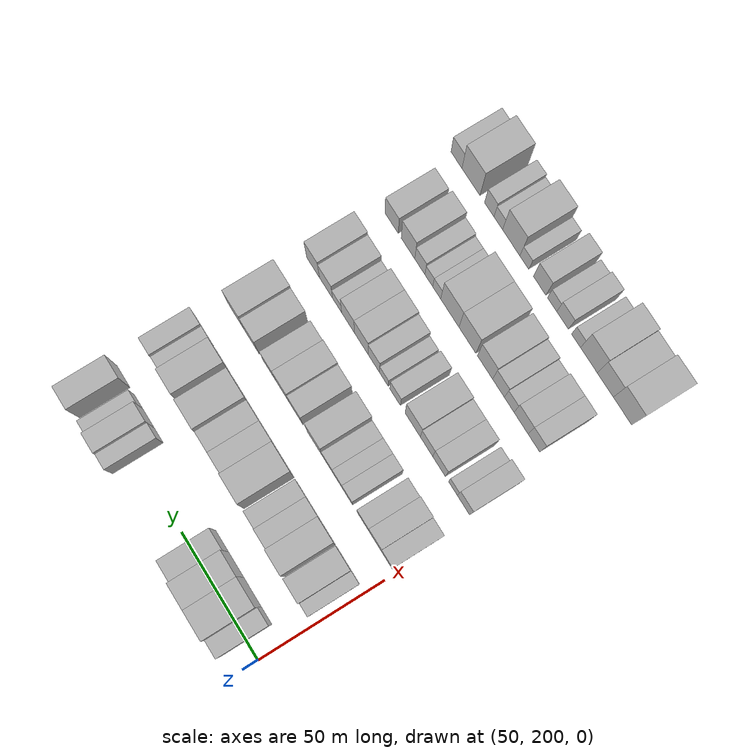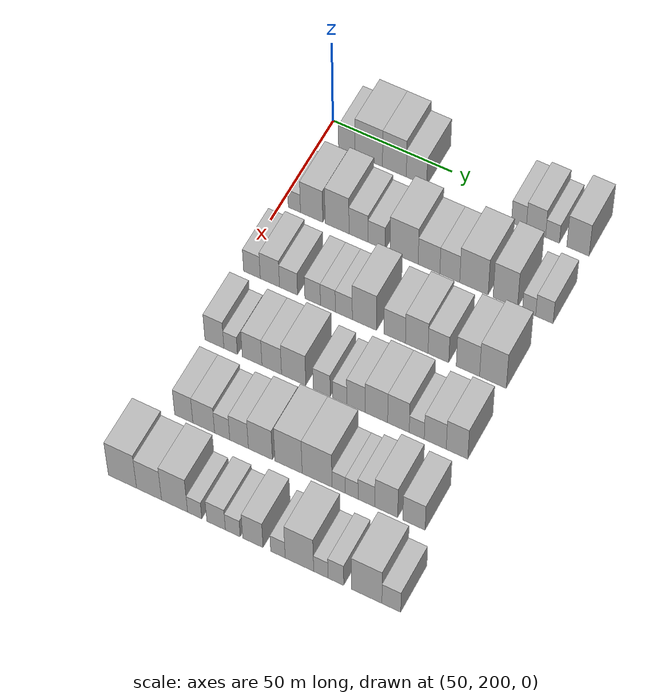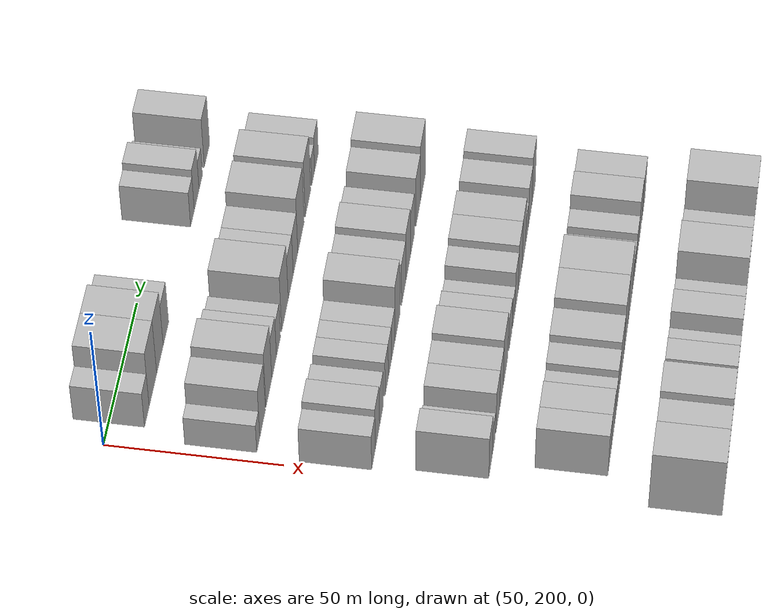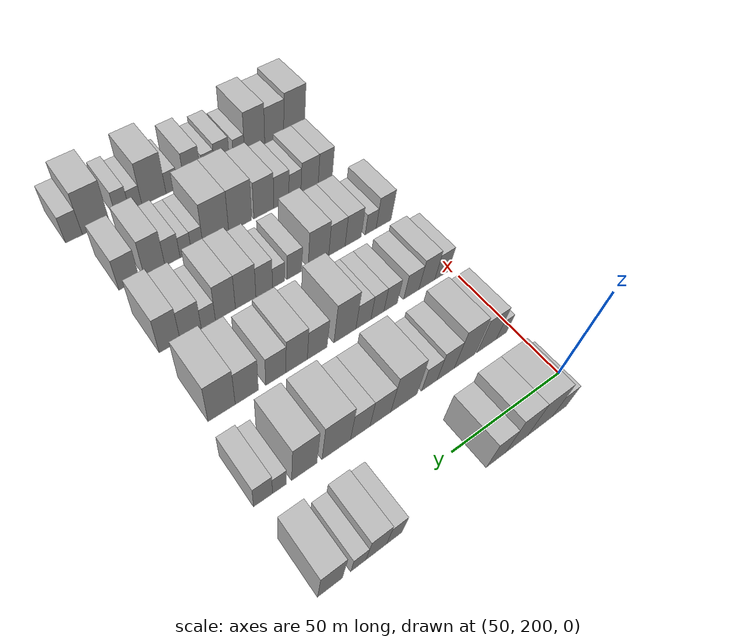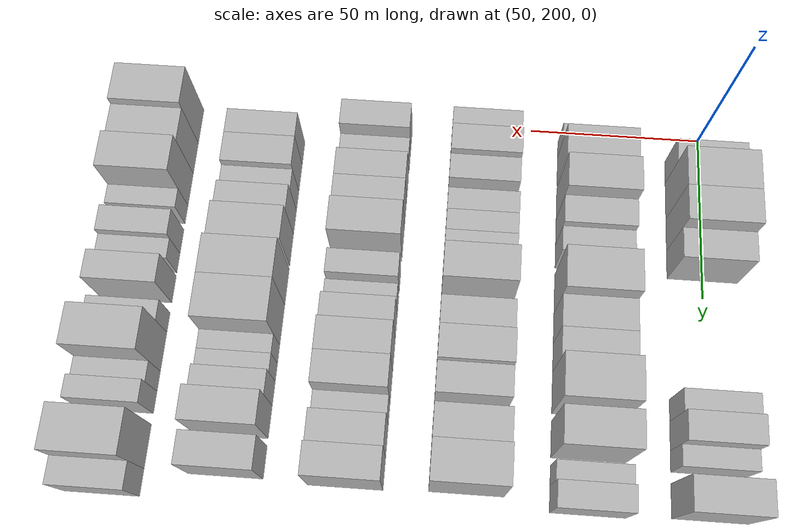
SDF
<sdf version="1.6">
 <world name="default">
  <model name="building_85">
   <static>1</static>
   <pose>50.0000 211.0096 0 0.000000 0.000000 0.000000</pose>
   <link name="link">
    <pose>0 0 7.50 0 0 0</pose>
    <collision name="collision"><geometry><box><size>20.0000 6.9923 15.0000</size></box></geometry></collision>
    <visual name="visual">
     <cast_shadows>0</cast_shadows>
     <geometry><box><size>20.0000 6.9923 15.0000</size></box></geometry>
     <material>
      <script>
       <uri>model://HANNAS_wall/materials/scripts</uri>
       <uri>model://HANNAS_wall/materials/textures</uri>
       <name>vrc/HANNAS_wall</name>
      </script>
     </material>
    </visual>
   </link>
  </model>
  <model name="building_86">
   <static>1</static>
   <pose>50.0000 220.2653 0 0.000000 0.000000 0.000000</pose>
   <link name="link">
    <pose>0 0 12.00 0 0 0</pose>
    <collision name="collision"><geometry><box><size>20.0000 11.5191 24.0000</size></box></geometry></collision>
    <visual name="visual">
     <cast_shadows>0</cast_shadows>
     <geometry><box><size>20.0000 11.5191 24.0000</size></box></geometry>
     <material>
      <script>
       <uri>model://HANNAS_wall/materials/scripts</uri>
       <uri>model://HANNAS_wall/materials/textures</uri>
       <name>vrc/HANNAS_wall</name>
      </script>
     </material>
    </visual>
   </link>
  </model>
  <model name="building_87">
   <static>1</static>
   <pose>50.0000 231.0287 0 0.000000 0.000000 0.000000</pose>
   <link name="link">
    <pose>0 0 12.00 0 0 0</pose>
    <collision name="collision"><geometry><box><size>20.0000 10.0076 24.0000</size></box></geometry></collision>
    <visual name="visual">
     <cast_shadows>0</cast_shadows>
     <geometry><box><size>20.0000 10.0076 24.0000</size></box></geometry>
     <material>
      <script>
       <uri>model://HANNAS_wall/materials/scripts</uri>
       <uri>model://HANNAS_wall/materials/textures</uri>
       <name>vrc/HANNAS_wall</name>
      </script>
     </material>
    </visual>
   </link>
  </model>
  <model name="building_88">
   <static>1</static>
   <pose>50.0000 240.2920 0 0.000000 0.000000 0.000000</pose>
   <link name="link">
    <pose>0 0 9.00 0 0 0</pose>
    <collision name="collision"><geometry><box><size>20.0000 8.5190 18.0000</size></box></geometry></collision>
    <visual name="visual">
     <cast_shadows>0</cast_shadows>
     <geometry><box><size>20.0000 8.5190 18.0000</size></box></geometry>
     <material>
      <script>
       <uri>model://HANNAS_wall/materials/scripts</uri>
       <uri>model://HANNAS_wall/materials/textures</uri>
       <name>vrc/HANNAS_wall</name>
      </script>
     </material>
    </visual>
   </link>
  </model>
  <model name="building_89">
   <static>1</static>
   <pose>50.0000 282.6709 0 0.000000 0.000000 0.000000</pose>
   <link name="link">
    <pose>0 0 7.50 0 0 0</pose>
    <collision name="collision"><geometry><box><size>20.0000 6.0796 15.0000</size></box></geometry></collision>
    <visual name="visual">
     <cast_shadows>0</cast_shadows>
     <geometry><box><size>20.0000 6.0796 15.0000</size></box></geometry>
     <material>
      <script>
       <uri>model://HANNAS_wall/materials/scripts</uri>
       <uri>model://HANNAS_wall/materials/textures</uri>
       <name>vrc/HANNAS_wall</name>
      </script>
     </material>
    </visual>
   </link>
  </model>
  <model name="building_90">
   <static>1</static>
   <pose>50.0000 289.6545 0 0.000000 0.000000 0.000000</pose>
   <link name="link">
    <pose>0 0 9.00 0 0 0</pose>
    <collision name="collision"><geometry><box><size>20.0000 7.8875 18.0000</size></box></geometry></collision>
    <visual name="visual">
     <cast_shadows>0</cast_shadows>
     <geometry><box><size>20.0000 7.8875 18.0000</size></box></geometry>
     <material>
      <script>
       <uri>model://HANNAS_wall/materials/scripts</uri>
       <uri>model://HANNAS_wall/materials/textures</uri>
       <name>vrc/HANNAS_wall</name>
      </script>
     </material>
    </visual>
   </link>
  </model>
  <model name="building_91">
   <static>1</static>
   <pose>50.0000 296.4424 0 0.000000 0.000000 0.000000</pose>
   <link name="link">
    <pose>0 0 6.00 0 0 0</pose>
    <collision name="collision"><geometry><box><size>20.0000 5.6882 12.0000</size></box></geometry></collision>
    <visual name="visual">
     <cast_shadows>0</cast_shadows>
     <geometry><box><size>20.0000 5.6882 12.0000</size></box></geometry>
     <material>
      <script>
       <uri>model://HANNAS_wall/materials/scripts</uri>
       <uri>model://HANNAS_wall/materials/textures</uri>
       <name>vrc/HANNAS_wall</name>
      </script>
     </material>
    </visual>
   </link>
  </model>
  <model name="building_92">
   <static>1</static>
   <pose>50.0000 306.8299 0 0.000000 0.000000 0.000000</pose>
   <link name="link">
    <pose>0 0 10.50 0 0 0</pose>
    <collision name="collision"><geometry><box><size>20.0000 9.0868 21.0000</size></box></geometry></collision>
    <visual name="visual">
     <cast_shadows>0</cast_shadows>
     <geometry><box><size>20.0000 9.0868 21.0000</size></box></geometry>
     <material>
      <script>
       <uri>model://HANNAS_wall/materials/scripts</uri>
       <uri>model://HANNAS_wall/materials/textures</uri>
       <name>vrc/HANNAS_wall</name>
      </script>
     </material>
    </visual>
   </link>
  </model>
  <model name="building_205">
   <static>1</static>
   <pose>82.0000 205.8001 0 0.000000 0.000000 0.000000</pose>
   <link name="link">
    <pose>0 0 6.00 0 0 0</pose>
    <collision name="collision"><geometry><box><size>20.0000 5.0955 12.0000</size></box></geometry></collision>
    <visual name="visual">
     <cast_shadows>0</cast_shadows>
     <geometry><box><size>20.0000 5.0955 12.0000</size></box></geometry>
     <material>
      <script>
       <uri>model://HANNAS_wall/materials/scripts</uri>
       <uri>model://HANNAS_wall/materials/textures</uri>
       <name>vrc/HANNAS_wall</name>
      </script>
     </material>
    </visual>
   </link>
  </model>
  <model name="building_206">
   <static>1</static>
   <pose>82.0000 213.0191 0 0.000000 0.000000 0.000000</pose>
   <link name="link">
    <pose>0 0 10.50 0 0 0</pose>
    <collision name="collision"><geometry><box><size>20.0000 9.3424 21.0000</size></box></geometry></collision>
    <visual name="visual">
     <cast_shadows>0</cast_shadows>
     <geometry><box><size>20.0000 9.3424 21.0000</size></box></geometry>
     <material>
      <script>
       <uri>model://HANNAS_wall/materials/scripts</uri>
       <uri>model://HANNAS_wall/materials/textures</uri>
       <name>vrc/HANNAS_wall</name>
      </script>
     </material>
    </visual>
   </link>
  </model>
  <model name="building_207">
   <static>1</static>
   <pose>82.0000 223.6529 0 0.000000 0.000000 0.000000</pose>
   <link name="link">
    <pose>0 0 12.00 0 0 0</pose>
    <collision name="collision"><geometry><box><size>20.0000 9.9253 24.0000</size></box></geometry></collision>
    <visual name="visual">
     <cast_shadows>0</cast_shadows>
     <geometry><box><size>20.0000 9.9253 24.0000</size></box></geometry>
     <material>
      <script>
       <uri>model://HANNAS_wall/materials/scripts</uri>
       <uri>model://HANNAS_wall/materials/textures</uri>
       <name>vrc/HANNAS_wall</name>
      </script>
     </material>
    </visual>
   </link>
  </model>
  <model name="building_208">
   <static>1</static>
   <pose>82.0000 232.5966 0 0.000000 0.000000 0.000000</pose>
   <link name="link">
    <pose>0 0 9.00 0 0 0</pose>
    <collision name="collision"><geometry><box><size>20.0000 7.9620 18.0000</size></box></geometry></collision>
    <visual name="visual">
     <cast_shadows>0</cast_shadows>
     <geometry><box><size>20.0000 7.9620 18.0000</size></box></geometry>
     <material>
      <script>
       <uri>model://HANNAS_wall/materials/scripts</uri>
       <uri>model://HANNAS_wall/materials/textures</uri>
       <name>vrc/HANNAS_wall</name>
      </script>
     </material>
    </visual>
   </link>
  </model>
  <model name="building_209">
   <static>1</static>
   <pose>82.0000 240.0907 0 0.000000 0.000000 0.000000</pose>
   <link name="link">
    <pose>0 0 7.50 0 0 0</pose>
    <collision name="collision"><geometry><box><size>20.0000 7.0262 15.0000</size></box></geometry></collision>
    <visual name="visual">
     <cast_shadows>0</cast_shadows>
     <geometry><box><size>20.0000 7.0262 15.0000</size></box></geometry>
     <material>
      <script>
       <uri>model://HANNAS_wall/materials/scripts</uri>
       <uri>model://HANNAS_wall/materials/textures</uri>
       <name>vrc/HANNAS_wall</name>
      </script>
     </material>
    </visual>
   </link>
  </model>
  <model name="building_210">
   <static>1</static>
   <pose>82.0000 251.4069 0 0.000000 0.000000 0.000000</pose>
   <link name="link">
    <pose>0 0 12.00 0 0 0</pose>
    <collision name="collision"><geometry><box><size>20.0000 11.6060 24.0000</size></box></geometry></collision>
    <visual name="visual">
     <cast_shadows>0</cast_shadows>
     <geometry><box><size>20.0000 11.6060 24.0000</size></box></geometry>
     <material>
      <script>
       <uri>model://HANNAS_wall/materials/scripts</uri>
       <uri>model://HANNAS_wall/materials/textures</uri>
       <name>vrc/HANNAS_wall</name>
      </script>
     </material>
    </visual>
   </link>
  </model>
  <model name="building_211">
   <static>1</static>
   <pose>82.0000 261.6581 0 0.000000 0.000000 0.000000</pose>
   <link name="link">
    <pose>0 0 9.00 0 0 0</pose>
    <collision name="collision"><geometry><box><size>20.0000 8.8963 18.0000</size></box></geometry></collision>
    <visual name="visual">
     <cast_shadows>0</cast_shadows>
     <geometry><box><size>20.0000 8.8963 18.0000</size></box></geometry>
     <material>
      <script>
       <uri>model://HANNAS_wall/materials/scripts</uri>
       <uri>model://HANNAS_wall/materials/textures</uri>
       <name>vrc/HANNAS_wall</name>
      </script>
     </material>
    </visual>
   </link>
  </model>
  <model name="building_212">
   <static>1</static>
   <pose>82.0000 270.1743 0 0.000000 0.000000 0.000000</pose>
   <link name="link">
    <pose>0 0 9.00 0 0 0</pose>
    <collision name="collision"><geometry><box><size>20.0000 8.1362 18.0000</size></box></geometry></collision>
    <visual name="visual">
     <cast_shadows>0</cast_shadows>
     <geometry><box><size>20.0000 8.1362 18.0000</size></box></geometry>
     <material>
      <script>
       <uri>model://HANNAS_wall/materials/scripts</uri>
       <uri>model://HANNAS_wall/materials/textures</uri>
       <name>vrc/HANNAS_wall</name>
      </script>
     </material>
    </visual>
   </link>
  </model>
  <model name="building_213">
   <static>1</static>
   <pose>82.0000 280.0347 0 0.000000 0.000000 0.000000</pose>
   <link name="link">
    <pose>0 0 12.00 0 0 0</pose>
    <collision name="collision"><geometry><box><size>20.0000 11.5846 24.0000</size></box></geometry></collision>
    <visual name="visual">
     <cast_shadows>0</cast_shadows>
     <geometry><box><size>20.0000 11.5846 24.0000</size></box></geometry>
     <material>
      <script>
       <uri>model://HANNAS_wall/materials/scripts</uri>
       <uri>model://HANNAS_wall/materials/textures</uri>
       <name>vrc/HANNAS_wall</name>
      </script>
     </material>
    </visual>
   </link>
  </model>
  <model name="building_214">
   <static>1</static>
   <pose>82.0000 292.7806 0 0.000000 0.000000 0.000000</pose>
   <link name="link">
    <pose>0 0 12.00 0 0 0</pose>
    <collision name="collision"><geometry><box><size>20.0000 9.9070 24.0000</size></box></geometry></collision>
    <visual name="visual">
     <cast_shadows>0</cast_shadows>
     <geometry><box><size>20.0000 9.9070 24.0000</size></box></geometry>
     <material>
      <script>
       <uri>model://HANNAS_wall/materials/scripts</uri>
       <uri>model://HANNAS_wall/materials/textures</uri>
       <name>vrc/HANNAS_wall</name>
      </script>
     </material>
    </visual>
   </link>
  </model>
  <model name="building_215">
   <static>1</static>
   <pose>82.0000 302.4039 0 0.000000 0.000000 0.000000</pose>
   <link name="link">
    <pose>0 0 6.00 0 0 0</pose>
    <collision name="collision"><geometry><box><size>20.0000 5.3396 12.0000</size></box></geometry></collision>
    <visual name="visual">
     <cast_shadows>0</cast_shadows>
     <geometry><box><size>20.0000 5.3396 12.0000</size></box></geometry>
     <material>
      <script>
       <uri>model://HANNAS_wall/materials/scripts</uri>
       <uri>model://HANNAS_wall/materials/textures</uri>
       <name>vrc/HANNAS_wall</name>
      </script>
     </material>
    </visual>
   </link>
  </model>
  <model name="building_216">
   <static>1</static>
   <pose>82.0000 308.5845 0 0.000000 0.000000 0.000000</pose>
   <link name="link">
    <pose>0 0 7.50 0 0 0</pose>
    <collision name="collision"><geometry><box><size>20.0000 7.0216 15.0000</size></box></geometry></collision>
    <visual name="visual">
     <cast_shadows>0</cast_shadows>
     <geometry><box><size>20.0000 7.0216 15.0000</size></box></geometry>
     <material>
      <script>
       <uri>model://HANNAS_wall/materials/scripts</uri>
       <uri>model://HANNAS_wall/materials/textures</uri>
       <name>vrc/HANNAS_wall</name>
      </script>
     </material>
    </visual>
   </link>
  </model>
  <model name="building_325">
   <static>1</static>
   <pose>114.0000 205.2593 0 0.000000 0.000000 0.000000</pose>
   <link name="link">
    <pose>0 0 7.50 0 0 0</pose>
    <collision name="collision"><geometry><box><size>20.0000 6.9402 15.0000</size></box></geometry></collision>
    <visual name="visual">
     <cast_shadows>0</cast_shadows>
     <geometry><box><size>20.0000 6.9402 15.0000</size></box></geometry>
     <material>
      <script>
       <uri>model://HANNAS_wall/materials/scripts</uri>
       <uri>model://HANNAS_wall/materials/textures</uri>
       <name>vrc/HANNAS_wall</name>
      </script>
     </material>
    </visual>
   </link>
  </model>
  <model name="building_326">
   <static>1</static>
   <pose>114.0000 212.7183 0 0.000000 0.000000 0.000000</pose>
   <link name="link">
    <pose>0 0 9.00 0 0 0</pose>
    <collision name="collision"><geometry><box><size>20.0000 7.9778 18.0000</size></box></geometry></collision>
    <visual name="visual">
     <cast_shadows>0</cast_shadows>
     <geometry><box><size>20.0000 7.9778 18.0000</size></box></geometry>
     <material>
      <script>
       <uri>model://HANNAS_wall/materials/scripts</uri>
       <uri>model://HANNAS_wall/materials/textures</uri>
       <name>vrc/HANNAS_wall</name>
      </script>
     </material>
    </visual>
   </link>
  </model>
  <model name="building_327">
   <static>1</static>
   <pose>114.0000 220.4417 0 0.000000 0.000000 0.000000</pose>
   <link name="link">
    <pose>0 0 7.50 0 0 0</pose>
    <collision name="collision"><geometry><box><size>20.0000 7.4690 15.0000</size></box></geometry></collision>
    <visual name="visual">
     <cast_shadows>0</cast_shadows>
     <geometry><box><size>20.0000 7.4690 15.0000</size></box></geometry>
     <material>
      <script>
       <uri>model://HANNAS_wall/materials/scripts</uri>
       <uri>model://HANNAS_wall/materials/textures</uri>
       <name>vrc/HANNAS_wall</name>
      </script>
     </material>
    </visual>
   </link>
  </model>
  <model name="building_328">
   <static>1</static>
   <pose>114.0000 230.3943 0 0.000000 0.000000 0.000000</pose>
   <link name="link">
    <pose>0 0 7.50 0 0 0</pose>
    <collision name="collision"><geometry><box><size>20.0000 6.4360 15.0000</size></box></geometry></collision>
    <visual name="visual">
     <cast_shadows>0</cast_shadows>
     <geometry><box><size>20.0000 6.4360 15.0000</size></box></geometry>
     <material>
      <script>
       <uri>model://HANNAS_wall/materials/scripts</uri>
       <uri>model://HANNAS_wall/materials/textures</uri>
       <name>vrc/HANNAS_wall</name>
      </script>
     </material>
    </visual>
   </link>
  </model>
  <model name="building_329">
   <static>1</static>
   <pose>114.0000 236.6741 0 0.000000 0.000000 0.000000</pose>
   <link name="link">
    <pose>0 0 7.50 0 0 0</pose>
    <collision name="collision"><geometry><box><size>20.0000 6.1237 15.0000</size></box></geometry></collision>
    <visual name="visual">
     <cast_shadows>0</cast_shadows>
     <geometry><box><size>20.0000 6.1237 15.0000</size></box></geometry>
     <material>
      <script>
       <uri>model://HANNAS_wall/materials/scripts</uri>
       <uri>model://HANNAS_wall/materials/textures</uri>
       <name>vrc/HANNAS_wall</name>
      </script>
     </material>
    </visual>
   </link>
  </model>
  <model name="building_330">
   <static>1</static>
   <pose>114.0000 243.2064 0 0.000000 0.000000 0.000000</pose>
   <link name="link">
    <pose>0 0 7.50 0 0 0</pose>
    <collision name="collision"><geometry><box><size>20.0000 6.9409 15.0000</size></box></geometry></collision>
    <visual name="visual">
     <cast_shadows>0</cast_shadows>
     <geometry><box><size>20.0000 6.9409 15.0000</size></box></geometry>
     <material>
      <script>
       <uri>model://HANNAS_wall/materials/scripts</uri>
       <uri>model://HANNAS_wall/materials/textures</uri>
       <name>vrc/HANNAS_wall</name>
      </script>
     </material>
    </visual>
   </link>
  </model>
  <model name="building_331">
   <static>1</static>
   <pose>114.0000 251.6370 0 0.000000 0.000000 0.000000</pose>
   <link name="link">
    <pose>0 0 12.00 0 0 0</pose>
    <collision name="collision"><geometry><box><size>20.0000 9.9203 24.0000</size></box></geometry></collision>
    <visual name="visual">
     <cast_shadows>0</cast_shadows>
     <geometry><box><size>20.0000 9.9203 24.0000</size></box></geometry>
     <material>
      <script>
       <uri>model://HANNAS_wall/materials/scripts</uri>
       <uri>model://HANNAS_wall/materials/textures</uri>
       <name>vrc/HANNAS_wall</name>
      </script>
     </material>
    </visual>
   </link>
  </model>
  <model name="building_332">
   <static>1</static>
   <pose>114.0000 263.9514 0 0.000000 0.000000 0.000000</pose>
   <link name="link">
    <pose>0 0 9.00 0 0 0</pose>
    <collision name="collision"><geometry><box><size>20.0000 8.7083 18.0000</size></box></geometry></collision>
    <visual name="visual">
     <cast_shadows>0</cast_shadows>
     <geometry><box><size>20.0000 8.7083 18.0000</size></box></geometry>
     <material>
      <script>
       <uri>model://HANNAS_wall/materials/scripts</uri>
       <uri>model://HANNAS_wall/materials/textures</uri>
       <name>vrc/HANNAS_wall</name>
      </script>
     </material>
    </visual>
   </link>
  </model>
  <model name="building_333">
   <static>1</static>
   <pose>114.0000 272.8801 0 0.000000 0.000000 0.000000</pose>
   <link name="link">
    <pose>0 0 10.50 0 0 0</pose>
    <collision name="collision"><geometry><box><size>20.0000 9.1491 21.0000</size></box></geometry></collision>
    <visual name="visual">
     <cast_shadows>0</cast_shadows>
     <geometry><box><size>20.0000 9.1491 21.0000</size></box></geometry>
     <material>
      <script>
       <uri>model://HANNAS_wall/materials/scripts</uri>
       <uri>model://HANNAS_wall/materials/textures</uri>
       <name>vrc/HANNAS_wall</name>
      </script>
     </material>
    </visual>
   </link>
  </model>
  <model name="building_334">
   <static>1</static>
   <pose>114.0000 281.6381 0 0.000000 0.000000 0.000000</pose>
   <link name="link">
    <pose>0 0 9.00 0 0 0</pose>
    <collision name="collision"><geometry><box><size>20.0000 8.3670 18.0000</size></box></geometry></collision>
    <visual name="visual">
     <cast_shadows>0</cast_shadows>
     <geometry><box><size>20.0000 8.3670 18.0000</size></box></geometry>
     <material>
      <script>
       <uri>model://HANNAS_wall/materials/scripts</uri>
       <uri>model://HANNAS_wall/materials/textures</uri>
       <name>vrc/HANNAS_wall</name>
      </script>
     </material>
    </visual>
   </link>
  </model>
  <model name="building_335">
   <static>1</static>
   <pose>114.0000 293.5046 0 0.000000 0.000000 0.000000</pose>
   <link name="link">
    <pose>0 0 10.50 0 0 0</pose>
    <collision name="collision"><geometry><box><size>20.0000 9.3659 21.0000</size></box></geometry></collision>
    <visual name="visual">
     <cast_shadows>0</cast_shadows>
     <geometry><box><size>20.0000 9.3659 21.0000</size></box></geometry>
     <material>
      <script>
       <uri>model://HANNAS_wall/materials/scripts</uri>
       <uri>model://HANNAS_wall/materials/textures</uri>
       <name>vrc/HANNAS_wall</name>
      </script>
     </material>
    </visual>
   </link>
  </model>
  <model name="building_336">
   <static>1</static>
   <pose>114.0000 303.5376 0 0.000000 0.000000 0.000000</pose>
   <link name="link">
    <pose>0 0 12.00 0 0 0</pose>
    <collision name="collision"><geometry><box><size>20.0000 10.7001 24.0000</size></box></geometry></collision>
    <visual name="visual">
     <cast_shadows>0</cast_shadows>
     <geometry><box><size>20.0000 10.7001 24.0000</size></box></geometry>
     <material>
      <script>
       <uri>model://HANNAS_wall/materials/scripts</uri>
       <uri>model://HANNAS_wall/materials/textures</uri>
       <name>vrc/HANNAS_wall</name>
      </script>
     </material>
    </visual>
   </link>
  </model>
  <model name="building_433">
   <static>1</static>
   <pose>146.0000 207.1779 0 0.000000 0.000000 0.000000</pose>
   <link name="link">
    <pose>0 0 9.00 0 0 0</pose>
    <collision name="collision"><geometry><box><size>20.0000 7.8160 18.0000</size></box></geometry></collision>
    <visual name="visual">
     <cast_shadows>0</cast_shadows>
     <geometry><box><size>20.0000 7.8160 18.0000</size></box></geometry>
     <material>
      <script>
       <uri>model://HANNAS_wall/materials/scripts</uri>
       <uri>model://HANNAS_wall/materials/textures</uri>
       <name>vrc/HANNAS_wall</name>
      </script>
     </material>
    </visual>
   </link>
  </model>
  <model name="building_434">
   <static>1</static>
   <pose>146.0000 213.8698 0 0.000000 0.000000 0.000000</pose>
   <link name="link">
    <pose>0 0 6.00 0 0 0</pose>
    <collision name="collision"><geometry><box><size>20.0000 5.5676 12.0000</size></box></geometry></collision>
    <visual name="visual">
     <cast_shadows>0</cast_shadows>
     <geometry><box><size>20.0000 5.5676 12.0000</size></box></geometry>
     <material>
      <script>
       <uri>model://HANNAS_wall/materials/scripts</uri>
       <uri>model://HANNAS_wall/materials/textures</uri>
       <name>vrc/HANNAS_wall</name>
      </script>
     </material>
    </visual>
   </link>
  </model>
  <model name="building_435">
   <static>1</static>
   <pose>146.0000 222.6830 0 0.000000 0.000000 0.000000</pose>
   <link name="link">
    <pose>0 0 9.00 0 0 0</pose>
    <collision name="collision"><geometry><box><size>20.0000 8.0588 18.0000</size></box></geometry></collision>
    <visual name="visual">
     <cast_shadows>0</cast_shadows>
     <geometry><box><size>20.0000 8.0588 18.0000</size></box></geometry>
     <material>
      <script>
       <uri>model://HANNAS_wall/materials/scripts</uri>
       <uri>model://HANNAS_wall/materials/textures</uri>
       <name>vrc/HANNAS_wall</name>
      </script>
     </material>
    </visual>
   </link>
  </model>
  <model name="building_436">
   <static>1</static>
   <pose>146.0000 230.6979 0 0.000000 0.000000 0.000000</pose>
   <link name="link">
    <pose>0 0 9.00 0 0 0</pose>
    <collision name="collision"><geometry><box><size>20.0000 7.9712 18.0000</size></box></geometry></collision>
    <visual name="visual">
     <cast_shadows>0</cast_shadows>
     <geometry><box><size>20.0000 7.9712 18.0000</size></box></geometry>
     <material>
      <script>
       <uri>model://HANNAS_wall/materials/scripts</uri>
       <uri>model://HANNAS_wall/materials/textures</uri>
       <name>vrc/HANNAS_wall</name>
      </script>
     </material>
    </visual>
   </link>
  </model>
  <model name="building_437">
   <static>1</static>
   <pose>146.0000 239.6231 0 0.000000 0.000000 0.000000</pose>
   <link name="link">
    <pose>0 0 10.50 0 0 0</pose>
    <collision name="collision"><geometry><box><size>20.0000 9.8792 21.0000</size></box></geometry></collision>
    <visual name="visual">
     <cast_shadows>0</cast_shadows>
     <geometry><box><size>20.0000 9.8792 21.0000</size></box></geometry>
     <material>
      <script>
       <uri>model://HANNAS_wall/materials/scripts</uri>
       <uri>model://HANNAS_wall/materials/textures</uri>
       <name>vrc/HANNAS_wall</name>
      </script>
     </material>
    </visual>
   </link>
  </model>
  <model name="building_438">
   <static>1</static>
   <pose>146.0000 251.0109 0 0.000000 0.000000 0.000000</pose>
   <link name="link">
    <pose>0 0 7.50 0 0 0</pose>
    <collision name="collision"><geometry><box><size>20.0000 6.8962 15.0000</size></box></geometry></collision>
    <visual name="visual">
     <cast_shadows>0</cast_shadows>
     <geometry><box><size>20.0000 6.8962 15.0000</size></box></geometry>
     <material>
      <script>
       <uri>model://HANNAS_wall/materials/scripts</uri>
       <uri>model://HANNAS_wall/materials/textures</uri>
       <name>vrc/HANNAS_wall</name>
      </script>
     </material>
    </visual>
   </link>
  </model>
  <model name="building_439">
   <static>1</static>
   <pose>146.0000 258.2820 0 0.000000 0.000000 0.000000</pose>
   <link name="link">
    <pose>0 0 6.00 0 0 0</pose>
    <collision name="collision"><geometry><box><size>20.0000 5.6460 12.0000</size></box></geometry></collision>
    <visual name="visual">
     <cast_shadows>0</cast_shadows>
     <geometry><box><size>20.0000 5.6460 12.0000</size></box></geometry>
     <material>
      <script>
       <uri>model://HANNAS_wall/materials/scripts</uri>
       <uri>model://HANNAS_wall/materials/textures</uri>
       <name>vrc/HANNAS_wall</name>
      </script>
     </material>
    </visual>
   </link>
  </model>
  <model name="building_440">
   <static>1</static>
   <pose>146.0000 264.8160 0 0.000000 0.000000 0.000000</pose>
   <link name="link">
    <pose>0 0 9.00 0 0 0</pose>
    <collision name="collision"><geometry><box><size>20.0000 7.4220 18.0000</size></box></geometry></collision>
    <visual name="visual">
     <cast_shadows>0</cast_shadows>
     <geometry><box><size>20.0000 7.4220 18.0000</size></box></geometry>
     <material>
      <script>
       <uri>model://HANNAS_wall/materials/scripts</uri>
       <uri>model://HANNAS_wall/materials/textures</uri>
       <name>vrc/HANNAS_wall</name>
      </script>
     </material>
    </visual>
   </link>
  </model>
  <model name="building_441">
   <static>1</static>
   <pose>146.0000 273.0291 0 0.000000 0.000000 0.000000</pose>
   <link name="link">
    <pose>0 0 10.50 0 0 0</pose>
    <collision name="collision"><geometry><box><size>20.0000 9.0042 21.0000</size></box></geometry></collision>
    <visual name="visual">
     <cast_shadows>0</cast_shadows>
     <geometry><box><size>20.0000 9.0042 21.0000</size></box></geometry>
     <material>
      <script>
       <uri>model://HANNAS_wall/materials/scripts</uri>
       <uri>model://HANNAS_wall/materials/textures</uri>
       <name>vrc/HANNAS_wall</name>
      </script>
     </material>
    </visual>
   </link>
  </model>
  <model name="building_442">
   <static>1</static>
   <pose>146.0000 281.8480 0 0.000000 0.000000 0.000000</pose>
   <link name="link">
    <pose>0 0 10.50 0 0 0</pose>
    <collision name="collision"><geometry><box><size>20.0000 8.6335 21.0000</size></box></geometry></collision>
    <visual name="visual">
     <cast_shadows>0</cast_shadows>
     <geometry><box><size>20.0000 8.6335 21.0000</size></box></geometry>
     <material>
      <script>
       <uri>model://HANNAS_wall/materials/scripts</uri>
       <uri>model://HANNAS_wall/materials/textures</uri>
       <name>vrc/HANNAS_wall</name>
      </script>
     </material>
    </visual>
   </link>
  </model>
  <model name="building_443">
   <static>1</static>
   <pose>146.0000 289.1527 0 0.000000 0.000000 0.000000</pose>
   <link name="link">
    <pose>0 0 6.00 0 0 0</pose>
    <collision name="collision"><geometry><box><size>20.0000 5.9760 12.0000</size></box></geometry></collision>
    <visual name="visual">
     <cast_shadows>0</cast_shadows>
     <geometry><box><size>20.0000 5.9760 12.0000</size></box></geometry>
     <material>
      <script>
       <uri>model://HANNAS_wall/materials/scripts</uri>
       <uri>model://HANNAS_wall/materials/textures</uri>
       <name>vrc/HANNAS_wall</name>
      </script>
     </material>
    </visual>
   </link>
  </model>
  <model name="building_444">
   <static>1</static>
   <pose>146.0000 296.5053 0 0.000000 0.000000 0.000000</pose>
   <link name="link">
    <pose>0 0 9.00 0 0 0</pose>
    <collision name="collision"><geometry><box><size>20.0000 8.7292 18.0000</size></box></geometry></collision>
    <visual name="visual">
     <cast_shadows>0</cast_shadows>
     <geometry><box><size>20.0000 8.7292 18.0000</size></box></geometry>
     <material>
      <script>
       <uri>model://HANNAS_wall/materials/scripts</uri>
       <uri>model://HANNAS_wall/materials/textures</uri>
       <name>vrc/HANNAS_wall</name>
      </script>
     </material>
    </visual>
   </link>
  </model>
  <model name="building_445">
   <static>1</static>
   <pose>146.0000 305.1483 0 0.000000 0.000000 0.000000</pose>
   <link name="link">
    <pose>0 0 10.50 0 0 0</pose>
    <collision name="collision"><geometry><box><size>20.0000 8.5568 21.0000</size></box></geometry></collision>
    <visual name="visual">
     <cast_shadows>0</cast_shadows>
     <geometry><box><size>20.0000 8.5568 21.0000</size></box></geometry>
     <material>
      <script>
       <uri>model://HANNAS_wall/materials/scripts</uri>
       <uri>model://HANNAS_wall/materials/textures</uri>
       <name>vrc/HANNAS_wall</name>
      </script>
     </material>
    </visual>
   </link>
  </model>
  <model name="building_553">
   <static>1</static>
   <pose>178.0000 212.3204 0 0.000000 0.000000 0.000000</pose>
   <link name="link">
    <pose>0 0 9.00 0 0 0</pose>
    <collision name="collision"><geometry><box><size>20.0000 7.3884 18.0000</size></box></geometry></collision>
    <visual name="visual">
     <cast_shadows>0</cast_shadows>
     <geometry><box><size>20.0000 7.3884 18.0000</size></box></geometry>
     <material>
      <script>
       <uri>model://HANNAS_wall/materials/scripts</uri>
       <uri>model://HANNAS_wall/materials/textures</uri>
       <name>vrc/HANNAS_wall</name>
      </script>
     </material>
    </visual>
   </link>
  </model>
  <model name="building_554">
   <static>1</static>
   <pose>178.0000 220.4280 0 0.000000 0.000000 0.000000</pose>
   <link name="link">
    <pose>0 0 9.00 0 0 0</pose>
    <collision name="collision"><geometry><box><size>20.0000 8.8267 18.0000</size></box></geometry></collision>
    <visual name="visual">
     <cast_shadows>0</cast_shadows>
     <geometry><box><size>20.0000 8.8267 18.0000</size></box></geometry>
     <material>
      <script>
       <uri>model://HANNAS_wall/materials/scripts</uri>
       <uri>model://HANNAS_wall/materials/textures</uri>
       <name>vrc/HANNAS_wall</name>
      </script>
     </material>
    </visual>
   </link>
  </model>
  <model name="building_555">
   <static>1</static>
   <pose>178.0000 227.9181 0 0.000000 0.000000 0.000000</pose>
   <link name="link">
    <pose>0 0 7.50 0 0 0</pose>
    <collision name="collision"><geometry><box><size>20.0000 6.1536 15.0000</size></box></geometry></collision>
    <visual name="visual">
     <cast_shadows>0</cast_shadows>
     <geometry><box><size>20.0000 6.1536 15.0000</size></box></geometry>
     <material>
      <script>
       <uri>model://HANNAS_wall/materials/scripts</uri>
       <uri>model://HANNAS_wall/materials/textures</uri>
       <name>vrc/HANNAS_wall</name>
      </script>
     </material>
    </visual>
   </link>
  </model>
  <model name="building_556">
   <static>1</static>
   <pose>178.0000 234.7479 0 0.000000 0.000000 0.000000</pose>
   <link name="link">
    <pose>0 0 9.00 0 0 0</pose>
    <collision name="collision"><geometry><box><size>20.0000 7.5060 18.0000</size></box></geometry></collision>
    <visual name="visual">
     <cast_shadows>0</cast_shadows>
     <geometry><box><size>20.0000 7.5060 18.0000</size></box></geometry>
     <material>
      <script>
       <uri>model://HANNAS_wall/materials/scripts</uri>
       <uri>model://HANNAS_wall/materials/textures</uri>
       <name>vrc/HANNAS_wall</name>
      </script>
     </material>
    </visual>
   </link>
  </model>
  <model name="building_557">
   <static>1</static>
   <pose>178.0000 243.3455 0 0.000000 0.000000 0.000000</pose>
   <link name="link">
    <pose>0 0 10.50 0 0 0</pose>
    <collision name="collision"><geometry><box><size>20.0000 9.6893 21.0000</size></box></geometry></collision>
    <visual name="visual">
     <cast_shadows>0</cast_shadows>
     <geometry><box><size>20.0000 9.6893 21.0000</size></box></geometry>
     <material>
      <script>
       <uri>model://HANNAS_wall/materials/scripts</uri>
       <uri>model://HANNAS_wall/materials/textures</uri>
       <name>vrc/HANNAS_wall</name>
      </script>
     </material>
    </visual>
   </link>
  </model>
  <model name="building_558">
   <static>1</static>
   <pose>178.0000 254.6379 0 0.000000 0.000000 0.000000</pose>
   <link name="link">
    <pose>0 0 12.00 0 0 0</pose>
    <collision name="collision"><geometry><box><size>20.0000 10.8955 24.0000</size></box></geometry></collision>
    <visual name="visual">
     <cast_shadows>0</cast_shadows>
     <geometry><box><size>20.0000 10.8955 24.0000</size></box></geometry>
     <material>
      <script>
       <uri>model://HANNAS_wall/materials/scripts</uri>
       <uri>model://HANNAS_wall/materials/textures</uri>
       <name>vrc/HANNAS_wall</name>
      </script>
     </material>
    </visual>
   </link>
  </model>
  <model name="building_559">
   <static>1</static>
   <pose>178.0000 266.0393 0 0.000000 0.000000 0.000000</pose>
   <link name="link">
    <pose>0 0 12.00 0 0 0</pose>
    <collision name="collision"><geometry><box><size>20.0000 11.9073 24.0000</size></box></geometry></collision>
    <visual name="visual">
     <cast_shadows>0</cast_shadows>
     <geometry><box><size>20.0000 11.9073 24.0000</size></box></geometry>
     <material>
      <script>
       <uri>model://HANNAS_wall/materials/scripts</uri>
       <uri>model://HANNAS_wall/materials/textures</uri>
       <name>vrc/HANNAS_wall</name>
      </script>
     </material>
    </visual>
   </link>
  </model>
  <model name="building_560">
   <static>1</static>
   <pose>178.0000 274.6121 0 0.000000 0.000000 0.000000</pose>
   <link name="link">
    <pose>0 0 6.00 0 0 0</pose>
    <collision name="collision"><geometry><box><size>20.0000 5.2383 12.0000</size></box></geometry></collision>
    <visual name="visual">
     <cast_shadows>0</cast_shadows>
     <geometry><box><size>20.0000 5.2383 12.0000</size></box></geometry>
     <material>
      <script>
       <uri>model://HANNAS_wall/materials/scripts</uri>
       <uri>model://HANNAS_wall/materials/textures</uri>
       <name>vrc/HANNAS_wall</name>
      </script>
     </material>
    </visual>
   </link>
  </model>
  <model name="building_561">
   <static>1</static>
   <pose>178.0000 279.7641 0 0.000000 0.000000 0.000000</pose>
   <link name="link">
    <pose>0 0 6.00 0 0 0</pose>
    <collision name="collision"><geometry><box><size>20.0000 5.0657 12.0000</size></box></geometry></collision>
    <visual name="visual">
     <cast_shadows>0</cast_shadows>
     <geometry><box><size>20.0000 5.0657 12.0000</size></box></geometry>
     <material>
      <script>
       <uri>model://HANNAS_wall/materials/scripts</uri>
       <uri>model://HANNAS_wall/materials/textures</uri>
       <name>vrc/HANNAS_wall</name>
      </script>
     </material>
    </visual>
   </link>
  </model>
  <model name="building_562">
   <static>1</static>
   <pose>178.0000 285.6493 0 0.000000 0.000000 0.000000</pose>
   <link name="link">
    <pose>0 0 7.50 0 0 0</pose>
    <collision name="collision"><geometry><box><size>20.0000 6.7046 15.0000</size></box></geometry></collision>
    <visual name="visual">
     <cast_shadows>0</cast_shadows>
     <geometry><box><size>20.0000 6.7046 15.0000</size></box></geometry>
     <material>
      <script>
       <uri>model://HANNAS_wall/materials/scripts</uri>
       <uri>model://HANNAS_wall/materials/textures</uri>
       <name>vrc/HANNAS_wall</name>
      </script>
     </material>
    </visual>
   </link>
  </model>
  <model name="building_563">
   <static>1</static>
   <pose>178.0000 293.4807 0 0.000000 0.000000 0.000000</pose>
   <link name="link">
    <pose>0 0 10.50 0 0 0</pose>
    <collision name="collision"><geometry><box><size>20.0000 8.9582 21.0000</size></box></geometry></collision>
    <visual name="visual">
     <cast_shadows>0</cast_shadows>
     <geometry><box><size>20.0000 8.9582 21.0000</size></box></geometry>
     <material>
      <script>
       <uri>model://HANNAS_wall/materials/scripts</uri>
       <uri>model://HANNAS_wall/materials/textures</uri>
       <name>vrc/HANNAS_wall</name>
      </script>
     </material>
    </visual>
   </link>
  </model>
  <model name="building_564">
   <static>1</static>
   <pose>178.0000 304.3388 0 0.000000 0.000000 0.000000</pose>
   <link name="link">
    <pose>0 0 9.00 0 0 0</pose>
    <collision name="collision"><geometry><box><size>20.0000 8.7580 18.0000</size></box></geometry></collision>
    <visual name="visual">
     <cast_shadows>0</cast_shadows>
     <geometry><box><size>20.0000 8.7580 18.0000</size></box></geometry>
     <material>
      <script>
       <uri>model://HANNAS_wall/materials/scripts</uri>
       <uri>model://HANNAS_wall/materials/textures</uri>
       <name>vrc/HANNAS_wall</name>
      </script>
     </material>
    </visual>
   </link>
  </model>
  <model name="building_668">
   <static>1</static>
   <pose>210.0000 205.4130 0 0.000000 0.000000 0.000000</pose>
   <link name="link">
    <pose>0 0 12.00 0 0 0</pose>
    <collision name="collision"><geometry><box><size>20.0000 11.4002 24.0000</size></box></geometry></collision>
    <visual name="visual">
     <cast_shadows>0</cast_shadows>
     <geometry><box><size>20.0000 11.4002 24.0000</size></box></geometry>
     <material>
      <script>
       <uri>model://HANNAS_wall/materials/scripts</uri>
       <uri>model://HANNAS_wall/materials/textures</uri>
       <name>vrc/HANNAS_wall</name>
      </script>
     </material>
    </visual>
   </link>
  </model>
  <model name="building_669">
   <static>1</static>
   <pose>210.0000 216.1524 0 0.000000 0.000000 0.000000</pose>
   <link name="link">
    <pose>0 0 10.50 0 0 0</pose>
    <collision name="collision"><geometry><box><size>20.0000 10.0786 21.0000</size></box></geometry></collision>
    <visual name="visual">
     <cast_shadows>0</cast_shadows>
     <geometry><box><size>20.0000 10.0786 21.0000</size></box></geometry>
     <material>
      <script>
       <uri>model://HANNAS_wall/materials/scripts</uri>
       <uri>model://HANNAS_wall/materials/textures</uri>
       <name>vrc/HANNAS_wall</name>
      </script>
     </material>
    </visual>
   </link>
  </model>
  <model name="building_670">
   <static>1</static>
   <pose>210.0000 226.4208 0 0.000000 0.000000 0.000000</pose>
   <link name="link">
    <pose>0 0 12.00 0 0 0</pose>
    <collision name="collision"><geometry><box><size>20.0000 10.4582 24.0000</size></box></geometry></collision>
    <visual name="visual">
     <cast_shadows>0</cast_shadows>
     <geometry><box><size>20.0000 10.4582 24.0000</size></box></geometry>
     <material>
      <script>
       <uri>model://HANNAS_wall/materials/scripts</uri>
       <uri>model://HANNAS_wall/materials/textures</uri>
       <name>vrc/HANNAS_wall</name>
      </script>
     </material>
    </visual>
   </link>
  </model>
  <model name="building_671">
   <static>1</static>
   <pose>210.0000 234.4937 0 0.000000 0.000000 0.000000</pose>
   <link name="link">
    <pose>0 0 6.00 0 0 0</pose>
    <collision name="collision"><geometry><box><size>20.0000 5.6876 12.0000</size></box></geometry></collision>
    <visual name="visual">
     <cast_shadows>0</cast_shadows>
     <geometry><box><size>20.0000 5.6876 12.0000</size></box></geometry>
     <material>
      <script>
       <uri>model://HANNAS_wall/materials/scripts</uri>
       <uri>model://HANNAS_wall/materials/textures</uri>
       <name>vrc/HANNAS_wall</name>
      </script>
     </material>
    </visual>
   </link>
  </model>
  <model name="building_672">
   <static>1</static>
   <pose>210.0000 243.0359 0 0.000000 0.000000 0.000000</pose>
   <link name="link">
    <pose>0 0 7.50 0 0 0</pose>
    <collision name="collision"><geometry><box><size>20.0000 7.3968 15.0000</size></box></geometry></collision>
    <visual name="visual">
     <cast_shadows>0</cast_shadows>
     <geometry><box><size>20.0000 7.3968 15.0000</size></box></geometry>
     <material>
      <script>
       <uri>model://HANNAS_wall/materials/scripts</uri>
       <uri>model://HANNAS_wall/materials/textures</uri>
       <name>vrc/HANNAS_wall</name>
      </script>
     </material>
    </visual>
   </link>
  </model>
  <model name="building_673">
   <static>1</static>
   <pose>210.0000 249.6815 0 0.000000 0.000000 0.000000</pose>
   <link name="link">
    <pose>0 0 6.00 0 0 0</pose>
    <collision name="collision"><geometry><box><size>20.0000 5.8943 12.0000</size></box></geometry></collision>
    <visual name="visual">
     <cast_shadows>0</cast_shadows>
     <geometry><box><size>20.0000 5.8943 12.0000</size></box></geometry>
     <material>
      <script>
       <uri>model://HANNAS_wall/materials/scripts</uri>
       <uri>model://HANNAS_wall/materials/textures</uri>
       <name>vrc/HANNAS_wall</name>
      </script>
     </material>
    </visual>
   </link>
  </model>
  <model name="building_674">
   <static>1</static>
   <pose>210.0000 257.6562 0 0.000000 0.000000 0.000000</pose>
   <link name="link">
    <pose>0 0 9.00 0 0 0</pose>
    <collision name="collision"><geometry><box><size>20.0000 8.0551 18.0000</size></box></geometry></collision>
    <visual name="visual">
     <cast_shadows>0</cast_shadows>
     <geometry><box><size>20.0000 8.0551 18.0000</size></box></geometry>
     <material>
      <script>
       <uri>model://HANNAS_wall/materials/scripts</uri>
       <uri>model://HANNAS_wall/materials/textures</uri>
       <name>vrc/HANNAS_wall</name>
      </script>
     </material>
    </visual>
   </link>
  </model>
  <model name="building_675">
   <static>1</static>
   <pose>210.0000 267.5414 0 0.000000 0.000000 0.000000</pose>
   <link name="link">
    <pose>0 0 6.00 0 0 0</pose>
    <collision name="collision"><geometry><box><size>20.0000 5.7153 12.0000</size></box></geometry></collision>
    <visual name="visual">
     <cast_shadows>0</cast_shadows>
     <geometry><box><size>20.0000 5.7153 12.0000</size></box></geometry>
     <material>
      <script>
       <uri>model://HANNAS_wall/materials/scripts</uri>
       <uri>model://HANNAS_wall/materials/textures</uri>
       <name>vrc/HANNAS_wall</name>
      </script>
     </material>
    </visual>
   </link>
  </model>
  <model name="building_676">
   <static>1</static>
   <pose>210.0000 276.0027 0 0.000000 0.000000 0.000000</pose>
   <link name="link">
    <pose>0 0 12.00 0 0 0</pose>
    <collision name="collision"><geometry><box><size>20.0000 11.2074 24.0000</size></box></geometry></collision>
    <visual name="visual">
     <cast_shadows>0</cast_shadows>
     <geometry><box><size>20.0000 11.2074 24.0000</size></box></geometry>
     <material>
      <script>
       <uri>model://HANNAS_wall/materials/scripts</uri>
       <uri>model://HANNAS_wall/materials/textures</uri>
       <name>vrc/HANNAS_wall</name>
      </script>
     </material>
    </visual>
   </link>
  </model>
  <model name="building_677">
   <static>1</static>
   <pose>210.0000 284.4191 0 0.000000 0.000000 0.000000</pose>
   <link name="link">
    <pose>0 0 6.00 0 0 0</pose>
    <collision name="collision"><geometry><box><size>20.0000 5.6253 12.0000</size></box></geometry></collision>
    <visual name="visual">
     <cast_shadows>0</cast_shadows>
     <geometry><box><size>20.0000 5.6253 12.0000</size></box></geometry>
     <material>
      <script>
       <uri>model://HANNAS_wall/materials/scripts</uri>
       <uri>model://HANNAS_wall/materials/textures</uri>
       <name>vrc/HANNAS_wall</name>
      </script>
     </material>
    </visual>
   </link>
  </model>
  <model name="building_678">
   <static>1</static>
   <pose>210.0000 290.3014 0 0.000000 0.000000 0.000000</pose>
   <link name="link">
    <pose>0 0 7.50 0 0 0</pose>
    <collision name="collision"><geometry><box><size>20.0000 6.1393 15.0000</size></box></geometry></collision>
    <visual name="visual">
     <cast_shadows>0</cast_shadows>
     <geometry><box><size>20.0000 6.1393 15.0000</size></box></geometry>
     <material>
      <script>
       <uri>model://HANNAS_wall/materials/scripts</uri>
       <uri>model://HANNAS_wall/materials/textures</uri>
       <name>vrc/HANNAS_wall</name>
      </script>
     </material>
    </visual>
   </link>
  </model>
  <model name="building_679">
   <static>1</static>
   <pose>210.0000 302.2907 0 0.000000 0.000000 0.000000</pose>
   <link name="link">
    <pose>0 0 12.00 0 0 0</pose>
    <collision name="collision"><geometry><box><size>20.0000 11.8393 24.0000</size></box></geometry></collision>
    <visual name="visual">
     <cast_shadows>0</cast_shadows>
     <geometry><box><size>20.0000 11.8393 24.0000</size></box></geometry>
     <material>
      <script>
       <uri>model://HANNAS_wall/materials/scripts</uri>
       <uri>model://HANNAS_wall/materials/textures</uri>
       <name>vrc/HANNAS_wall</name>
      </script>
     </material>
    </visual>
   </link>
  </model>
  <model name="building_680">
   <static>1</static>
   <pose>210.0000 311.8554 0 0.000000 0.000000 0.000000</pose>
   <link name="link">
    <pose>0 0 7.50 0 0 0</pose>
    <collision name="collision"><geometry><box><size>20.0000 7.2900 15.0000</size></box></geometry></collision>
    <visual name="visual">
     <cast_shadows>0</cast_shadows>
     <geometry><box><size>20.0000 7.2900 15.0000</size></box></geometry>
     <material>
      <script>
       <uri>model://HANNAS_wall/materials/scripts</uri>
       <uri>model://HANNAS_wall/materials/textures</uri>
       <name>vrc/HANNAS_wall</name>
      </script>
     </material>
    </visual>
   </link>
  </model>
 </world>
</sdf>
